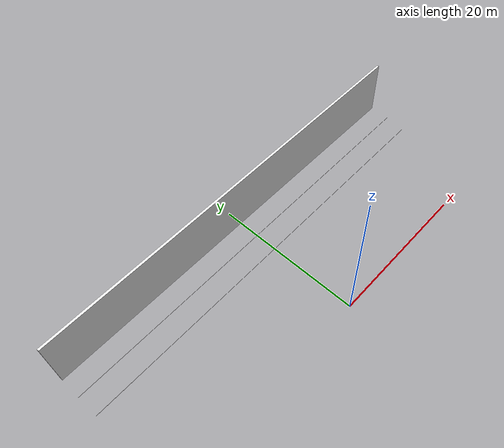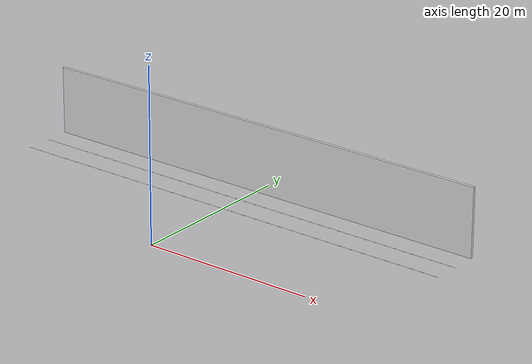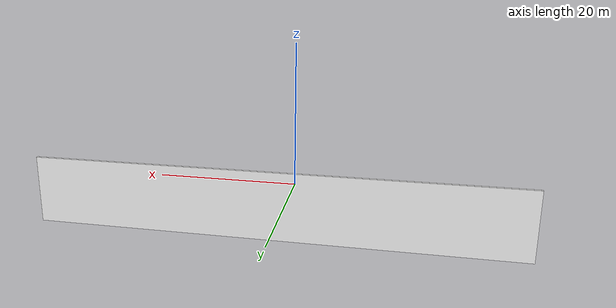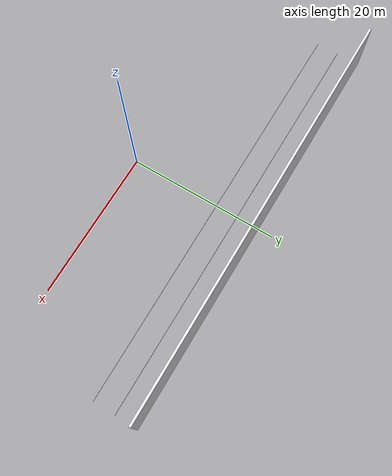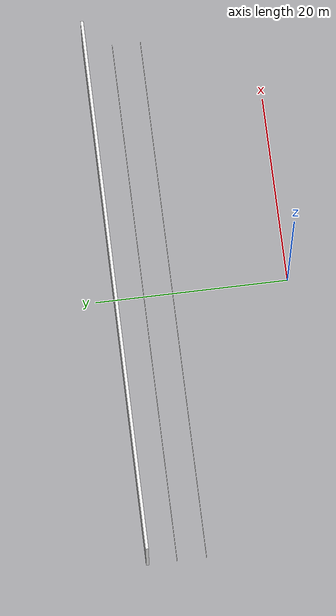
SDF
<sdf version="1.6">
 <world name="aws_industrial_warehouse">
  <model name="wall_north">
   <static>true</static>
   <pose>0 18 4 0 0 0</pose>
   <link name="l">
    <collision name="c">
     <geometry><box><size>56 0.3 8</size></box></geometry>
     <surface><friction><ode><mu>1.0</mu><mu2>1.0</mu2></ode></friction></surface>
    </collision>
    <visual name="v">
     <geometry><box><size>56 0.3 8</size></box></geometry>
     <material><ambient>0.85 0.85 0.85 1</ambient><diffuse>0.90 0.90 0.90 1</diffuse></material>
    </visual>
   </link>
  </model>
  <model name="jnt_EW_10">
   <static>true</static>
   <pose>0 12 0.001 0 0 0</pose>
   <link name="l">
    <visual name="v">
     <geometry><box><size>56.0 0.04 0.002</size></box></geometry>
     <material><ambient>0.58 0.58 0.57 1</ambient><diffuse>0.63 0.63 0.61 1</diffuse></material>
    </visual>
   </link>
  </model>
  <model name="jnt_EW_11">
   <static>true</static>
   <pose>0 15 0.001 0 0 0</pose>
   <link name="l">
    <visual name="v">
     <geometry><box><size>56.0 0.04 0.002</size></box></geometry>
     <material><ambient>0.58 0.58 0.57 1</ambient><diffuse>0.63 0.63 0.61 1</diffuse></material>
    </visual>
   </link>
  </model>
  <model name="jnt_EW_12">
   <static>true</static>
   <pose>0 18 0.001 0 0 0</pose>
   <link name="l">
    <visual name="v">
     <geometry><box><size>56.0 0.04 0.002</size></box></geometry>
     <material><ambient>0.58 0.58 0.57 1</ambient><diffuse>0.63 0.63 0.61 1</diffuse></material>
    </visual>
   </link>
  </model>
 </world>
</sdf>
